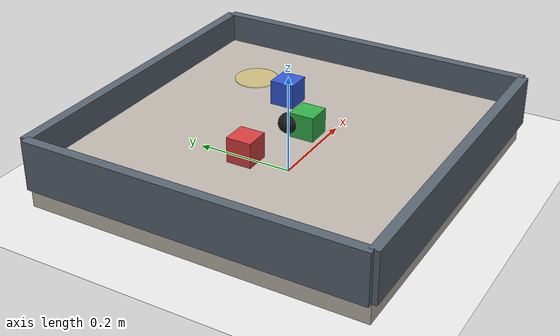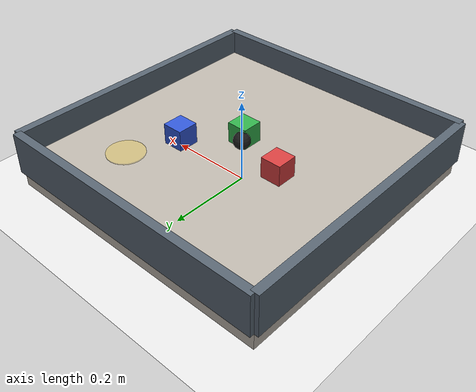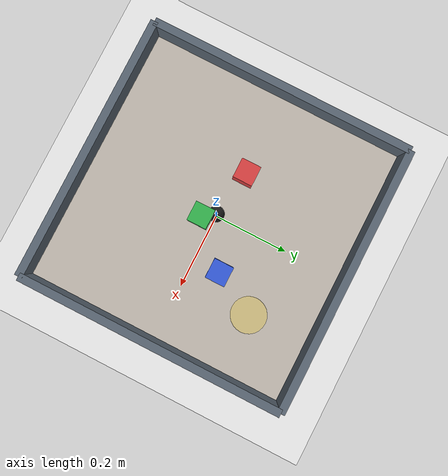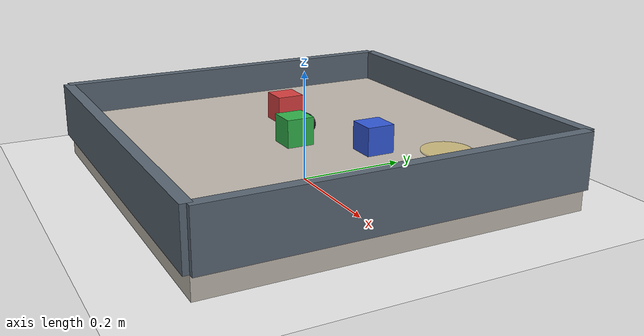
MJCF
<mujoco model="tabletop_push_3obj">
  <compiler angle="radian" coordinate="local"/>
  <option timestep="0.005" gravity="0 0 -9.81" integrator="implicitfast"/>

  <visual>
    <headlight ambient="0.6 0.6 0.6" diffuse="0.4 0.4 0.4" specular="0.1 0.1 0.1"/>
    <rgba haze="0.15 0.2 0.25 1"/>
  </visual>

  <asset>
    <texture type="skybox" builtin="gradient" rgb1="0.96 0.97 0.99" rgb2="0.76 0.83 0.9" width="256" height="256"/>
    <material name="table" rgba="0.75 0.72 0.68 1"/>
    <material name="wall" rgba="0.35 0.4 0.45 1"/>
    <material name="pusher" rgba="0.1 0.1 0.1 1"/>
    <material name="obj_red" rgba="0.85 0.25 0.25 1"/>
    <material name="obj_green" rgba="0.2 0.7 0.3 1"/>
    <material name="obj_blue" rgba="0.2 0.35 0.85 1"/>
    <material name="goal" rgba="0.95 0.8 0.2 0.35"/>
  </asset>

  <default>
    <geom condim="4" friction="0.8 0.05 0.01" solref="0.01 1"/>
    <joint damping="1" armature="0.01"/>
    <position kp="300"/>
  </default>

  <worldbody>
    <light pos="0 0 1.6" dir="0 0 -1"/>
    <camera name="overview" pos="0 -0.95 0.75" xyaxes="1 0 0 0 0.58 0.82"/>

    <geom name="floor" type="plane" size="2 2 0.1" rgba="0.92 0.92 0.92 1"/>
    <body name="table" pos="0 0 0.04">
      <geom name="tabletop" type="box" size="0.34 0.34 0.04" material="table"/>
      <geom name="wall_north" type="box" pos="0 0.34 0.05" size="0.34 0.01 0.05" material="wall"/>
      <geom name="wall_south" type="box" pos="0 -0.34 0.05" size="0.34 0.01 0.05" material="wall"/>
      <geom name="wall_east" type="box" pos="0.34 0 0.05" size="0.01 0.34 0.05" material="wall"/>
      <geom name="wall_west" type="box" pos="-0.34 0 0.05" size="0.01 0.34 0.05" material="wall"/>
    </body>

    <site name="goal_site" type="cylinder" pos="0.18 0.18 0.081" size="0.045 0.002" material="goal"/>

    <body name="pusher" pos="0 0 0.105">
      <joint name="pusher_x" type="slide" axis="1 0 0" range="-0.26 0.26"/>
      <joint name="pusher_y" type="slide" axis="0 1 0" range="-0.26 0.26"/>
      <geom name="pusher_geom" type="sphere" size="0.02" material="pusher" mass="0.2" friction="0.2 0.02 0.01"/>
      <site name="pusher_site" pos="0 0 0" size="0.01"/>
    </body>

    <body name="object_0" pos="-0.12 0.02 0.105">
      <freejoint name="object_0_free"/>
      <geom name="object_0_geom" type="box" size="0.025 0.025 0.025" material="obj_red" mass="0.08" friction="0.12 0.01 0.002"/>
    </body>

    <body name="object_1" pos="0.02 -0.03 0.105">
      <freejoint name="object_1_free"/>
      <geom name="object_1_geom" type="box" size="0.025 0.025 0.025" material="obj_green" mass="0.08" friction="0.12 0.01 0.002"/>
    </body>

    <body name="object_2" pos="0.12 0.07 0.105">
      <freejoint name="object_2_free"/>
      <geom name="object_2_geom" type="box" size="0.025 0.025 0.025" material="obj_blue" mass="0.08" friction="0.12 0.01 0.002"/>
    </body>
  </worldbody>

  <actuator>
    <position name="pusher_x_ctrl" joint="pusher_x" ctrlrange="-0.26 0.26"/>
    <position name="pusher_y_ctrl" joint="pusher_y" ctrlrange="-0.26 0.26"/>
  </actuator>
</mujoco>
